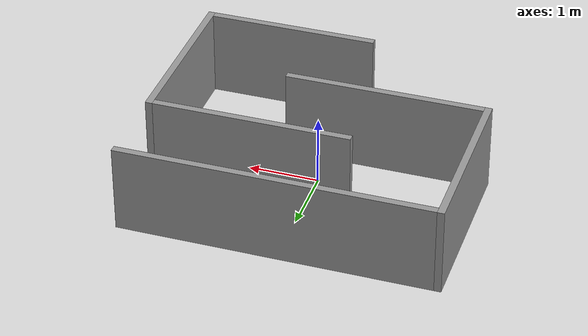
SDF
<?xml version="1.0" ?>
  <sdf version="1.5">
  <model name='office'>

    <static>1</static>

    <link name='Wall_10'>
        <pose>-0.750 -0.6 0.625 0.0 0.0 0.0</pose>

        <visual name='Wall_10_Visual'>
            <pose>0 0 0 0 -0 0</pose>
            <geometry>
                <box>
                    <size>2.8 0.1 1.25</size>
                </box>
            </geometry>
              <material>
                <ambient>0.6 0.6 0.6 1</ambient>
                <diffuse>0.6 0.6 0.6 1</diffuse>
                <specular>0.6 0.6 0.6 1</specular>
              </material>
        <cast_shadows>0</cast_shadows>
      </visual>

      <collision name='Wall_10_Collision'>
        <max_contacts>10</max_contacts>
        <pose>0 0 0.0 0 0 0</pose>
        <geometry>
          <box>
            <size>2.8 0.1 1.25</size>
          </box>
        </geometry>
        <surface>
          <friction>
            <ode>
              <mu>1</mu>
              <mu2>1</mu2>
              <fdir1>0 0 0</fdir1>
              <slip1>0</slip1>
              <slip2>0</slip2>
            </ode>
          </friction>
          <bounce>
            <restitution_coefficient>0</restitution_coefficient>
            <threshold>1e+06</threshold>
          </bounce>
          <contact>
            <collide_without_contact>0</collide_without_contact>
            <collide_without_contact_bitmask>1</collide_without_contact_bitmask>
            <collide_bitmask>1</collide_bitmask>
            <ode>
              <soft_cfm>0</soft_cfm>
              <soft_erp>0.2</soft_erp>
              <kp>1e+13</kp>
              <kd>1</kd>
              <max_vel>0.01</max_vel>
              <min_depth>0</min_depth>
            </ode>
            <bullet>
              <split_impulse>1</split_impulse>
              <split_impulse_penetration_threshold>-0.01</split_impulse_penetration_threshold>
              <soft_cfm>0</soft_cfm>
              <soft_erp>0.2</soft_erp>
              <kp>1e+13</kp>
              <kd>1</kd>
            </bullet>
          </contact>
        </surface>
      </collision>
    </link>

    <link name='Wall_20'>
          <pose>-2.2 0.6 0.625 0.0 0.0 0.0</pose>

          <visual name='Wall_20_Visual'>
              <pose>0 0 0 0 -0 0</pose>
              <geometry>
                  <box>
                      <size>0.1 2.5 1.25</size>
                  </box>
              </geometry>
              <material>
                <ambient>0.6 0.6 0.6 1</ambient>
                <diffuse>0.6 0.6 0.6 1</diffuse>
                <specular>0.6 0.6 0.6 1</specular>
              </material>
          <cast_shadows>0</cast_shadows>
        </visual>

        <collision name='Wall_20_Collision'>
          <max_contacts>10</max_contacts>
          <pose>0 0 0.0 0 0 0</pose>
          <geometry>
            <box>
              <size>0.1 2.5 1.25</size>
            </box>
          </geometry>
          <surface>
            <friction>
              <ode>
                <mu>1</mu>
                <mu2>1</mu2>
                <fdir1>0 0 0</fdir1>
                <slip1>0</slip1>
                <slip2>0</slip2>
              </ode>
            </friction>
            <bounce>
              <restitution_coefficient>0</restitution_coefficient>
              <threshold>1e+06</threshold>
            </bounce>
            <contact>
              <collide_without_contact>0</collide_without_contact>
              <collide_without_contact_bitmask>1</collide_without_contact_bitmask>
              <collide_bitmask>1</collide_bitmask>
              <ode>
                <soft_cfm>0</soft_cfm>
                <soft_erp>0.2</soft_erp>
                <kp>1e+13</kp>
                <kd>1</kd>
                <max_vel>0.01</max_vel>
                <min_depth>0</min_depth>
              </ode>
              <bullet>
                <split_impulse>1</split_impulse>
                <split_impulse_penetration_threshold>-0.01</split_impulse_penetration_threshold>
                <soft_cfm>0</soft_cfm>
                <soft_erp>0.2</soft_erp>
                <kp>1e+13</kp>
                <kd>1</kd>
              </bullet>
            </contact>
          </surface>
        </collision>
    </link>

    <link name='Wall_30'>
        <pose>0.05 1.8 0.625 0.0 0.0 0.0</pose>

        <visual name='Wall_30_Visual'>
            <pose>0 0 0 0 -0 0</pose>
            <geometry>
                <box>
                    <size>4.4 0.1 1.25</size>
                </box>
            </geometry>
              <material>
                <ambient>0.6 0.6 0.6 1</ambient>
                <diffuse>0.6 0.6 0.6 1</diffuse>
                <specular>0.6 0.6 0.6 1</specular>
              </material>
        <cast_shadows>0</cast_shadows>
      </visual>

      <collision name='Wall_30_Collision'>
        <max_contacts>10</max_contacts>
        <pose>0 0 0.0 0 0 0</pose>
        <geometry>
          <box>
            <size>4.4 0.1 1.25</size>
          </box>
        </geometry>
        <surface>
          <friction>
            <ode>
              <mu>1</mu>
              <mu2>1</mu2>
              <fdir1>0 0 0</fdir1>
              <slip1>0</slip1>
              <slip2>0</slip2>
            </ode>
          </friction>
          <bounce>
            <restitution_coefficient>0</restitution_coefficient>
            <threshold>1e+06</threshold>
          </bounce>
          <contact>
            <collide_without_contact>0</collide_without_contact>
            <collide_without_contact_bitmask>1</collide_without_contact_bitmask>
            <collide_bitmask>1</collide_bitmask>
            <ode>
              <soft_cfm>0</soft_cfm>
              <soft_erp>0.2</soft_erp>
              <kp>1e+13</kp>
              <kd>1</kd>
              <max_vel>0.01</max_vel>
              <min_depth>0</min_depth>
            </ode>
            <bullet>
              <split_impulse>1</split_impulse>
              <split_impulse_penetration_threshold>-0.01</split_impulse_penetration_threshold>
              <soft_cfm>0</soft_cfm>
              <soft_erp>0.2</soft_erp>
              <kp>1e+13</kp>
              <kd>1</kd>
            </bullet>
          </contact>
        </surface>
      </collision>
    </link>

    <link name='Wall_40'>
        <!-- Parte superior quitada: antes y=-1.85..1.75, ahora y=-1.85..0.65
             Abre salida este de la zona superior (entre Wall_60 y Wall_30). -->
        <pose>2.2 -0.60 0.625 0.0 0.0 0.0</pose>

        <visual name='Wall_40_Visual'>
            <pose>0 0 0 0 -0 0</pose>
            <geometry>
                <box>
                    <size>0.1 2.5 1.25</size>
                </box>
            </geometry>
              <material>
                <ambient>0.6 0.6 0.6 1</ambient>
                <diffuse>0.6 0.6 0.6 1</diffuse>
                <specular>0.6 0.6 0.6 1</specular>
              </material>
        <cast_shadows>0</cast_shadows>
      </visual>

      <collision name='Wall_40_Collision'>
        <max_contacts>10</max_contacts>
        <pose>0 0 0.0 0 0 0</pose>
        <geometry>
          <box>
            <size>0.1 2.5 1.25</size>
          </box>
        </geometry>
        <surface>
          <friction>
            <ode>
              <mu>1</mu>
              <mu2>1</mu2>
              <fdir1>0 0 0</fdir1>
              <slip1>0</slip1>
              <slip2>0</slip2>
            </ode>
          </friction>
          <bounce>
            <restitution_coefficient>0</restitution_coefficient>
            <threshold>1e+06</threshold>
          </bounce>
          <contact>
            <collide_without_contact>0</collide_without_contact>
            <collide_without_contact_bitmask>1</collide_without_contact_bitmask>
            <collide_bitmask>1</collide_bitmask>
            <ode>
              <soft_cfm>0</soft_cfm>
              <soft_erp>0.2</soft_erp>
              <kp>1e+13</kp>
              <kd>1</kd>
              <max_vel>0.01</max_vel>
              <min_depth>0</min_depth>
            </ode>
            <bullet>
              <split_impulse>1</split_impulse>
              <split_impulse_penetration_threshold>-0.01</split_impulse_penetration_threshold>
              <soft_cfm>0</soft_cfm>
              <soft_erp>0.2</soft_erp>
              <kp>1e+13</kp>
              <kd>1</kd>
            </bullet>
          </contact>
        </surface>
      </collision>
    </link>

    <link name='Wall_50'>
        <pose>0.95 -1.8 0.625 0.0 0.0 0.0</pose>

        <visual name='Wall_50_Visual'>
            <pose>0 0 0 0 -0 0</pose>
            <geometry>
                <box>
                    <size>2.4 0.1 1.25</size>
                </box>
            </geometry>
              <material>
                <ambient>0.6 0.6 0.6 1</ambient>
                <diffuse>0.6 0.6 0.6 1</diffuse>
                <specular>0.6 0.6 0.6 1</specular>
              </material>
        <cast_shadows>0</cast_shadows>
      </visual>

      <collision name='Wall_50_Collision'>
        <max_contacts>10</max_contacts>
        <pose>0 0 0.0 0 0 0</pose>
        <geometry>
          <box>
            <size>2.4 0.1 1.25</size>
          </box>
        </geometry>
        <surface>
          <friction>
            <ode>
              <mu>1</mu>
              <mu2>1</mu2>
              <fdir1>0 0 0</fdir1>
              <slip1>0</slip1>
              <slip2>0</slip2>
            </ode>
          </friction>
          <bounce>
            <restitution_coefficient>0</restitution_coefficient>
            <threshold>1e+06</threshold>
          </bounce>
          <contact>
            <collide_without_contact>0</collide_without_contact>
            <collide_without_contact_bitmask>1</collide_without_contact_bitmask>
            <collide_bitmask>1</collide_bitmask>
            <ode>
              <soft_cfm>0</soft_cfm>
              <soft_erp>0.2</soft_erp>
              <kp>1e+13</kp>
              <kd>1</kd>
              <max_vel>0.01</max_vel>
              <min_depth>0</min_depth>
            </ode>
            <bullet>
              <split_impulse>1</split_impulse>
              <split_impulse_penetration_threshold>-0.01</split_impulse_penetration_threshold>
              <soft_cfm>0</soft_cfm>
              <soft_erp>0.2</soft_erp>
              <kp>1e+13</kp>
              <kd>1</kd>
            </bullet>
          </contact>
        </surface>
      </collision>
    </link>

    <link name='Wall_60'>
        <pose>0.75 0.6 0.625 0.0 0.0 0.0</pose>

        <visual name='Wall_60_Visual'>
            <pose>0 0 0 0 -0 0</pose>
            <geometry>
                <box>
                    <size>2.8 0.1 1.25</size>
                </box>
            </geometry>
              <material>
                <ambient>0.6 0.6 0.6 1</ambient>
                <diffuse>0.6 0.6 0.6 1</diffuse>
                <specular>0.6 0.6 0.6 1</specular>
              </material>
        <cast_shadows>0</cast_shadows>
      </visual>

      <collision name='Wall_60_Collision'>
        <max_contacts>10</max_contacts>
        <pose>0 0 0.0 0 0 0</pose>
        <geometry>
          <box>
            <size>2.8 0.1 1.25</size>
          </box>
        </geometry>
        <surface>
          <friction>
            <ode>
              <mu>1</mu>
              <mu2>1</mu2>
              <fdir1>0 0 0</fdir1>
              <slip1>0</slip1>
              <slip2>0</slip2>
            </ode>
          </friction>
          <bounce>
            <restitution_coefficient>0</restitution_coefficient>
            <threshold>1e+06</threshold>
          </bounce>
          <contact>
            <collide_without_contact>0</collide_without_contact>
            <collide_without_contact_bitmask>1</collide_without_contact_bitmask>
            <collide_bitmask>1</collide_bitmask>
            <ode>
              <soft_cfm>0</soft_cfm>
              <soft_erp>0.2</soft_erp>
              <kp>1e+13</kp>
              <kd>1</kd>
              <max_vel>0.01</max_vel>
              <min_depth>0</min_depth>
            </ode>
            <bullet>
              <split_impulse>1</split_impulse>
              <split_impulse_penetration_threshold>-0.01</split_impulse_penetration_threshold>
              <soft_cfm>0</soft_cfm>
              <soft_erp>0.2</soft_erp>
              <kp>1e+13</kp>
              <kd>1</kd>
            </bullet>
          </contact>
        </surface>
      </collision>
    </link>

  </model>
  </sdf>
